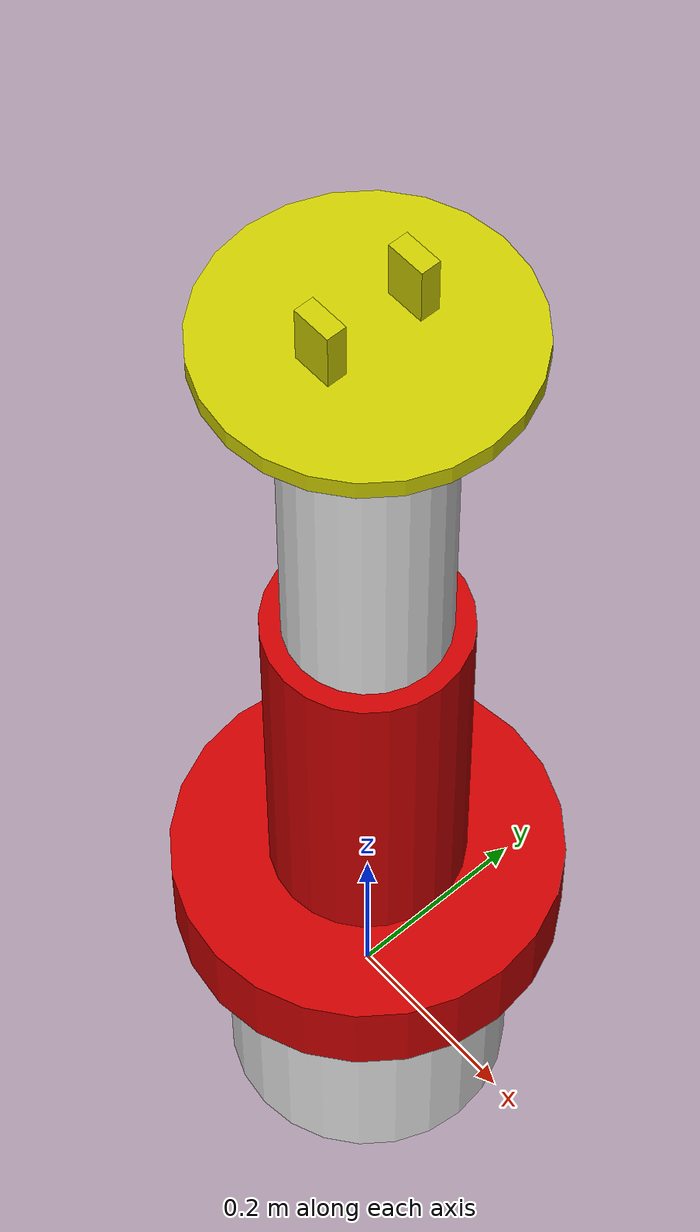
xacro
<?xml version="1.0"?>
<robot xmlns:xacro="http://www.ros.org/wiki/xacro" name="manipulator_robot">
    <xacro:arg name="initial_positions_file" default="initial_positions.yaml" />

    <!-- Import manipulator_robot urdf file -->
    <xacro:include filename="$(find d11115810_ros2summercamp)/urdf/robot.urdf" />

    <!-- Import control_xacro -->
    <xacro:include filename="manipulator_robot.ros2_control.xacro" />

    <xacro:manipulator_robot_ros2_control name="FakeSystem" initial_positions_file="$(arg initial_positions_file)"/>

  <gazebo>
    <plugin filename="libgz_ros2_control-system.so" name="gz_ros2_control::GazeboSimROS2ControlPlugin">
      <parameters>$(find d11115810_moveit_config)/config/ros2_controllers.yaml</parameters>
      <controller_manager_name>controller_manager</controller_manager_name>
    </plugin>
  </gazebo>

</robot>

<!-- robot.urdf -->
<robot name="manipulator_robot">

  <!-- Materials matching color assignments -->
  <material name="red"><color rgba="0.8 0.0 0.0 1.0"/></material>
  <material name="white"><color rgba="0.9 0.9 0.9 1.0"/></material>
  <material name="yellow"><color rgba="0.8 0.8 0.0 1.0"/></material>

  <!-- ==================== LINKS AND JOINTS ==================== -->

  <!-- Base Link: Cylinder (h=0.3, r=0.15, m=2.0kg) -->
  <link name="base_link">
    <visual>
      <geometry><cylinder length="0.3" radius="0.15"/></geometry>
      <material name="white"/>
    </visual>
    <collision>
      <geometry><cylinder length="0.3" radius="0.15"/></geometry>
    </collision>
    <inertial>
      <origin xyz="0 0 0" rpy="0 0 0"/>
      <mass value="2.0"/>
      <inertia ixx="0.02625" ixy="0.0" ixz="0.0" iyy="0.02625" iyz="0.0" izz="0.0225"/>
    </inertial>
  </link>

  <!-- arm_0_joint -->
  <joint name="arm_0_joint" type="revolute">
    <parent link="base_link"/>
    <child link="link_1"/>
    <origin xyz="0 0 0.15" rpy="0 0 0"/>
    <axis xyz="0 0 1"/>
    <limit lower="-3.14" upper="3.14" effort="10.0" velocity="1.0"/>
  </joint>

  <!-- Link 1: Cylinder (h=0.1, r=0.2, m=1.0kg) -->
  <link name="link_1">
    <visual>
      <origin xyz="0 0 0.05" rpy="0 0 0"/>
      <geometry><cylinder length="0.1" radius="0.2"/></geometry>
      <material name="red"/>
    </visual>
    <collision>
      <origin xyz="0 0 0.05" rpy="0 0 0"/>
      <geometry><cylinder length="0.1" radius="0.2"/></geometry>
    </collision>
    <inertial>
      <origin xyz="0 0 0.05" rpy="0 0 0"/>
      <mass value="1.0"/>
      <inertia ixx="0.01083" ixy="0.0" ixz="0.0" iyy="0.01083" iyz="0.0" izz="0.02"/>
    </inertial>
  </link>

  <!-- arm_1_joint -->
  <joint name="arm_1_joint" type="revolute">
    <parent link="link_1"/>
    <child link="link_2"/>
    <origin xyz="0 0 0.1" rpy="0 0 0"/>
    <axis xyz="0 1 0"/>
    <limit lower="-1.57" upper="1.57" effort="10.0" velocity="1.0"/>
  </joint>

  <!-- Link 2: Cylinder (h=0.4, r=0.1, m=1.0kg) -->
  <link name="link_2">
    <visual>
      <origin xyz="0 0 0.2" rpy="0 0 0"/>
      <geometry><cylinder length="0.4" radius="0.1"/></geometry>
      <material name="red"/>
    </visual>
    <collision>
      <origin xyz="0 0 0.2" rpy="0 0 0"/>
      <geometry><cylinder length="0.4" radius="0.1"/></geometry>
    </collision>
    <inertial>
      <origin xyz="0 0 0.2" rpy="0 0 0"/>
      <mass value="1.0"/>
      <inertia ixx="0.01583" ixy="0.0" ixz="0.0" iyy="0.01583" iyz="0.0" izz="0.005"/>
    </inertial>
  </link>

  <!-- arm_2_joint -->
  <joint name="arm_2_joint" type="revolute">
    <parent link="link_2"/>
    <child link="link_3"/>
    <origin xyz="0 0 0.4" rpy="0 0 0"/>
    <axis xyz="0 1 0"/>
    <limit lower="-1.57" upper="1.57" effort="10.0" velocity="1.0"/>
  </joint>

  <!-- Link 3: Cylinder (h=0.4, r=0.08, m=1.0kg) -->
  <link name="link_3">
    <visual>
      <origin xyz="0 0 0.2" rpy="0 0 0"/>
      <geometry><cylinder length="0.4" radius="0.08"/></geometry>
      <material name="white"/>
    </visual>
    <collision>
      <origin xyz="0 0 0.2" rpy="0 0 0"/>
      <geometry><cylinder length="0.4" radius="0.08"/></geometry>
    </collision>
    <inertial>
      <origin xyz="0 0 0.2" rpy="0 0 0"/>
      <mass value="1.0"/>
      <inertia ixx="0.0148" ixy="0.0" ixz="0.0" iyy="0.0148" iyz="0.0" izz="0.0032"/>
    </inertial>
  </link>

  <!-- ==================== GRIPPER SECTION ==================== -->

  <!-- Fixed Joint to Gripper Base -->
  <joint name="gripper_base_joint" type="fixed">
    <parent link="link_3"/>
    <child link="gripper_base"/>
    <origin xyz="0 0 0.4" rpy="0 0 0"/>
  </joint>

  <!-- Gripper Base: Cylinder (h=0.02, r=0.15, m=0.5kg) -->
  <link name="gripper_base">
    <visual>
      <origin xyz="0 0 0.01" rpy="0 0 0"/>
      <geometry><cylinder length="0.02" radius="0.15"/></geometry>
      <material name="yellow"/>
    </visual>
    <collision>
      <origin xyz="0 0 0.01" rpy="0 0 0"/>
      <geometry><cylinder length="0.02" radius="0.15"/></geometry>
    </collision>
    <inertial>
      <origin xyz="0 0 0.01" rpy="0 0 0"/>
      <mass value="0.5"/>
      <inertia ixx="0.00283" ixy="0.0" ixz="0.0" iyy="0.00283" iyz="0.0" izz="0.00563"/>
    </inertial>
  </link>

  <!-- gripper_1_joint -->
  <joint name="gripper_1_joint" type="prismatic">
    <parent link="gripper_base"/>
    <child link="left_finger"/>
    <origin xyz="0 0.05 0.02" rpy="0 0 0"/>
    <axis xyz="0 1 0"/>
    <limit lower="-0.04" upper="0.0" effort="10.0" velocity="1.0"/>
  </joint>

  <!-- Left Finger: Box (x=0.04, y=0.02, z=0.06, m=0.1kg) -->
  <link name="left_finger">
    <visual>
      <origin xyz="0 0 0.03" rpy="0 0 0"/>
      <geometry><box size="0.04 0.02 0.06"/></geometry>
      <material name="yellow"/>
    </visual>
    <collision>
      <origin xyz="0 0 0.03" rpy="0 0 0"/>
      <geometry><box size="0.04 0.02 0.06"/></geometry>
    </collision>
    <inertial>
      <origin xyz="0 0 0.03" rpy="0 0 0"/>
      <mass value="0.1"/>
      <inertia ixx="0.000033" ixy="0.0" ixz="0.0" iyy="0.000043" iyz="0.0" izz="0.000017"/>
    </inertial>
  </link>

  <!-- gripper_2_joint -->
  <joint name="gripper_2_joint" type="prismatic">
    <parent link="gripper_base"/>
    <child link="right_finger"/>
    <origin xyz="0 -0.05 0.02" rpy="0 0 0"/>
    <axis xyz="0 1 0"/>
    <limit lower="0.0" upper="0.04" effort="10.0" velocity="1.0"/>
  </joint>

  <!-- Right Finger: Box (x=0.04, y=0.02, z=0.06, m=0.1kg) -->
  <link name="right_finger">
    <visual>
      <origin xyz="0 0 0.03" rpy="0 0 0"/>
      <geometry><box size="0.04 0.02 0.06"/></geometry>
      <material name="yellow"/>
    </visual>
    <collision>
      <origin xyz="0 0 0.03" rpy="0 0 0"/>
      <geometry><box size="0.04 0.02 0.06"/></geometry>
    </collision>
    <inertial>
      <origin xyz="0 0 0.03" rpy="0 0 0"/>
      <mass value="0.1"/>
      <inertia ixx="0.000033" ixy="0.0" ixz="0.0" iyy="0.000043" iyz="0.0" izz="0.000017"/>
    </inertial>
  </link>

</robot>
